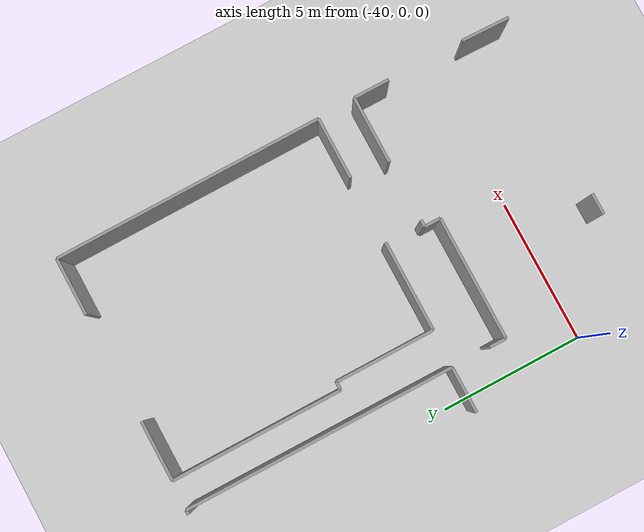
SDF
<sdf version="1.6">
 <world name="default">
  <model name="ground_plane">
   <static>1</static>
   <link name="link">
    <collision name="collision">
     <geometry><plane><normal>0 0 1</normal><size>100 100</size></plane></geometry>
     <surface><friction><ode><mu>100</mu><mu2>50</mu2></ode></friction></surface>
    </collision>
    <visual name="visual">
     <cast_shadows>0</cast_shadows>
     <geometry><plane><normal>0 0 1</normal><size>100 100</size></plane></geometry>
     <material>
      <script><uri>file://media/materials/scripts/gazebo.material</uri><name>Gazebo/Grey</name></script>
     </material>
    </visual>
   </link>
  </model>
  <model name="50056458">
   <static>1</static>
   <link name="Wall_7">
    <collision name="Wall_7_Collision">
     <geometry><box><size>1.59129985517 0.1 2.5</size></box></geometry>
     <pose>0.795649927583 0 1.25 0 0 0</pose>
    </collision>
    <visual name="Wall_7_Visual">
     <pose>0.795649927583 0 1.25 0 0 0</pose>
     <geometry><box><size>1.59129985517 0.1 2.5</size></box></geometry>
     <material>
      <script><uri>file://media/materials/scripts/gazebo.material</uri><name>Gazebo/Grey</name></script>
      <ambient>1 1 1 1</ambient>
     </material>
    </visual>
    <pose>15.9621232012 -10.6707208619 0 0 0 3.14159265359</pose>
   </link>
   <link name="Wall_11">
    <collision name="Wall_11_Collision">
     <geometry><box><size>0.1560131112 0.1 2.5</size></box></geometry>
     <pose>0.0780065555998 0 1.25 0 0 0</pose>
    </collision>
    <visual name="Wall_11_Visual">
     <pose>0.0780065555998 0 1.25 0 0 0</pose>
     <geometry><box><size>0.1560131112 0.1 2.5</size></box></geometry>
     <material>
      <script><uri>file://media/materials/scripts/gazebo.material</uri><name>Gazebo/Grey</name></script>
      <ambient>1 1 1 1</ambient>
     </material>
    </visual>
    <pose>15.8284702754 -1.3482175375 0 0 0 0.0</pose>
   </link>
   <link name="Wall_12">
    <collision name="Wall_12_Collision">
     <geometry><box><size>9.32253013999 0.1 2.5</size></box></geometry>
     <pose>4.66126507 0 1.25 0 0 0</pose>
    </collision>
    <visual name="Wall_12_Visual">
     <pose>4.66126507 0 1.25 0 0 0</pose>
     <geometry><box><size>9.32253013999 0.1 2.5</size></box></geometry>
     <material>
      <script><uri>file://media/materials/scripts/gazebo.material</uri><name>Gazebo/Grey</name></script>
      <ambient>1 1 1 1</ambient>
     </material>
    </visual>
    <pose>15.9844833866 -1.3482175375 0 0 0 -1.57319483948</pose>
   </link>
   <link name="Wall_13">
    <collision name="Wall_13_Collision">
     <geometry><box><size>2.14437565111 0.1 2.5</size></box></geometry>
     <pose>1.07218782556 0 1.25 0 0 0</pose>
    </collision>
    <visual name="Wall_13_Visual">
     <pose>1.07218782556 0 1.25 0 0 0</pose>
     <geometry><box><size>2.14437565111 0.1 2.5</size></box></geometry>
     <material>
      <script><uri>file://media/materials/scripts/gazebo.material</uri><name>Gazebo/Grey</name></script>
      <ambient>1 1 1 1</ambient>
     </material>
    </visual>
    <pose>24.8252263545 -10.7030753725 0 0 0 3.14159265359</pose>
   </link>
   <link name="Wall_14">
    <collision name="Wall_14_Collision">
     <geometry><box><size>3.11602734041 0.1 2.5</size></box></geometry>
     <pose>1.5580136702 0 1.25 0 0 0</pose>
    </collision>
    <visual name="Wall_14_Visual">
     <pose>1.5580136702 0 1.25 0 0 0</pose>
     <geometry><box><size>3.11602734041 0.1 2.5</size></box></geometry>
     <material>
      <script><uri>file://media/materials/scripts/gazebo.material</uri><name>Gazebo/Grey</name></script>
      <ambient>1 1 1 1</ambient>
     </material>
    </visual>
    <pose>20.3713145926 -10.7030753725 0 0 0 3.14159265359</pose>
   </link>
   <link name="Wall_15">
    <collision name="Wall_15_Collision">
     <geometry><box><size>3.41822863289 0.1 2.5</size></box></geometry>
     <pose>1.70911431645 0 1.25 0 0 0</pose>
    </collision>
    <visual name="Wall_15_Visual">
     <pose>1.70911431645 0 1.25 0 0 0</pose>
     <geometry><box><size>3.41822863289 0.1 2.5</size></box></geometry>
     <material>
      <script><uri>file://media/materials/scripts/gazebo.material</uri><name>Gazebo/Grey</name></script>
      <ambient>1 1 1 1</ambient>
     </material>
    </visual>
    <pose>17.2552872522 -10.7030753725 0 0 0 1.57079632679</pose>
   </link>
   <link name="Wall_16">
    <collision name="Wall_16_Collision">
     <geometry><box><size>0.279502316481 0.1 2.5</size></box></geometry>
     <pose>0.139751158241 0 1.25 0 0 0</pose>
    </collision>
    <visual name="Wall_16_Visual">
     <pose>0.139751158241 0 1.25 0 0 0</pose>
     <geometry><box><size>0.279502316481 0.1 2.5</size></box></geometry>
     <material>
      <script><uri>file://media/materials/scripts/gazebo.material</uri><name>Gazebo/Grey</name></script>
      <ambient>1 1 1 1</ambient>
     </material>
    </visual>
    <pose>17.2552872522 -7.28484673956 0 0 0 3.14159265359</pose>
   </link>
   <link name="Wall_17">
    <collision name="Wall_17_Collision">
     <geometry><box><size>5.89224762211 0.1 2.5</size></box></geometry>
     <pose>2.94612381106 0 1.25 0 0 0</pose>
    </collision>
    <visual name="Wall_17_Visual">
     <pose>2.94612381106 0 1.25 0 0 0</pose>
     <geometry><box><size>5.89224762211 0.1 2.5</size></box></geometry>
     <material>
      <script><uri>file://media/materials/scripts/gazebo.material</uri><name>Gazebo/Grey</name></script>
      <ambient>1 1 1 1</ambient>
     </material>
    </visual>
    <pose>16.9757849357 -7.28484673956 0 0 0 1.57079632679</pose>
   </link>
   <link name="Wall_18">
    <collision name="Wall_18_Collision">
     <geometry><box><size>2.07136625814 0.1 2.5</size></box></geometry>
     <pose>1.03568312907 0 1.25 0 0 0</pose>
    </collision>
    <visual name="Wall_18_Visual">
     <pose>1.03568312907 0 1.25 0 0 0</pose>
     <geometry><box><size>2.07136625814 0.1 2.5</size></box></geometry>
     <material>
      <script><uri>file://media/materials/scripts/gazebo.material</uri><name>Gazebo/Grey</name></script>
      <ambient>1 1 1 1</ambient>
     </material>
    </visual>
    <pose>16.9757849357 -1.39259911745 0 0 0 0.0</pose>
   </link>
   <link name="Wall_19">
    <collision name="Wall_19_Collision">
     <geometry><box><size>1.99598533036 0.1 2.5</size></box></geometry>
     <pose>0.997992665182 0 1.25 0 0 0</pose>
    </collision>
    <visual name="Wall_19_Visual">
     <pose>0.997992665182 0 1.25 0 0 0</pose>
     <geometry><box><size>1.99598533036 0.1 2.5</size></box></geometry>
     <material>
      <script><uri>file://media/materials/scripts/gazebo.material</uri><name>Gazebo/Grey</name></script>
      <ambient>1 1 1 1</ambient>
     </material>
    </visual>
    <pose>22.7950231648 -1.39259911745 0 0 0 0.0</pose>
   </link>
   <link name="Wall_20">
    <collision name="Wall_20_Collision">
     <geometry><box><size>9.31053913353 0.1 2.5</size></box></geometry>
     <pose>4.65526956676 0 1.25 0 0 0</pose>
    </collision>
    <visual name="Wall_20_Visual">
     <pose>4.65526956676 0 1.25 0 0 0</pose>
     <geometry><box><size>9.31053913353 0.1 2.5</size></box></geometry>
     <material>
      <script><uri>file://media/materials/scripts/gazebo.material</uri><name>Gazebo/Grey</name></script>
      <ambient>1 1 1 1</ambient>
     </material>
    </visual>
    <pose>24.7910084952 -1.39259911745 0 0 0 -1.56712114366</pose>
   </link>
   <link name="Wall_50">
    <collision name="Wall_50_Collision">
     <geometry><box><size>0.74296797581 0.1 2.5</size></box></geometry>
     <pose>0.371483987905 0 1.25 0 0 0</pose>
    </collision>
    <visual name="Wall_50_Visual">
     <pose>0.371483987905 0 1.25 0 0 0</pose>
     <geometry><box><size>0.74296797581 0.1 2.5</size></box></geometry>
     <material>
      <script><uri>file://media/materials/scripts/gazebo.material</uri><name>Gazebo/Grey</name></script>
      <ambient>1 1 1 1</ambient>
     </material>
    </visual>
    <pose>18.6514436718 -17.1587319065 0 0 0 3.14159265359</pose>
   </link>
   <link name="Wall_65">
    <collision name="Wall_65_Collision">
     <geometry><box><size>0.572895051115 0.1 2.5</size></box></geometry>
     <pose>0.286447525558 0 1.25 0 0 0</pose>
    </collision>
    <visual name="Wall_65_Visual">
     <pose>0.286447525558 0 1.25 0 0 0</pose>
     <geometry><box><size>0.572895051115 0.1 2.5</size></box></geometry>
     <material>
      <script><uri>file://media/materials/scripts/gazebo.material</uri><name>Gazebo/Grey</name></script>
      <ambient>1 1 1 1</ambient>
     </material>
    </visual>
    <pose>15.9511125039 -12.0025070511 0 0 0 -1.57079632679</pose>
   </link>
   <link name="Wall_66">
    <collision name="Wall_66_Collision">
     <geometry><box><size>4.27689362819 0.1 2.5</size></box></geometry>
     <pose>2.1384468141 0 1.25 0 0 0</pose>
    </collision>
    <visual name="Wall_66_Visual">
     <pose>2.1384468141 0 1.25 0 0 0</pose>
     <geometry><box><size>4.27689362819 0.1 2.5</size></box></geometry>
     <material>
      <script><uri>file://media/materials/scripts/gazebo.material</uri><name>Gazebo/Grey</name></script>
      <ambient>1 1 1 1</ambient>
     </material>
    </visual>
    <pose>15.9511125039 -12.5754021022 0 0 0 0.0</pose>
   </link>
   <link name="Wall_67">
    <collision name="Wall_67_Collision">
     <geometry><box><size>0.556971888843 0.1 2.5</size></box></geometry>
     <pose>0.278485944421 0 1.25 0 0 0</pose>
    </collision>
    <visual name="Wall_67_Visual">
     <pose>0.278485944421 0 1.25 0 0 0</pose>
     <geometry><box><size>0.556971888843 0.1 2.5</size></box></geometry>
     <material>
      <script><uri>file://media/materials/scripts/gazebo.material</uri><name>Gazebo/Grey</name></script>
      <ambient>1 1 1 1</ambient>
     </material>
    </visual>
    <pose>20.2280061321 -12.5754021022 0 0 0 1.57079632679</pose>
   </link>
   <link name="Wall_68">
    <collision name="Wall_68_Collision">
     <geometry><box><size>0.233934969128 0.1 2.5</size></box></geometry>
     <pose>0.116967484564 0 1.25 0 0 0</pose>
    </collision>
    <visual name="Wall_68_Visual">
     <pose>0.116967484564 0 1.25 0 0 0</pose>
     <geometry><box><size>0.233934969128 0.1 2.5</size></box></geometry>
     <material>
      <script><uri>file://media/materials/scripts/gazebo.material</uri><name>Gazebo/Grey</name></script>
      <ambient>1 1 1 1</ambient>
     </material>
    </visual>
    <pose>20.2280061321 -12.0184302134 0 0 0 0.0</pose>
   </link>
   <link name="Wall_69">
    <collision name="Wall_69_Collision">
     <geometry><box><size>2.3273226219 0.1 2.5</size></box></geometry>
     <pose>1.16366131095 0 1.25 0 0 0</pose>
    </collision>
    <visual name="Wall_69_Visual">
     <pose>1.16366131095 0 1.25 0 0 0</pose>
     <geometry><box><size>2.3273226219 0.1 2.5</size></box></geometry>
     <material>
      <script><uri>file://media/materials/scripts/gazebo.material</uri><name>Gazebo/Grey</name></script>
      <ambient>1 1 1 1</ambient>
     </material>
    </visual>
    <pose>22.5492305217 -12.0184302134 0 0 0 0.0</pose>
   </link>
   <link name="Wall_70">
    <collision name="Wall_70_Collision">
     <geometry><box><size>1.23641661091 0.1 2.5</size></box></geometry>
     <pose>0.618208305454 0 1.25 0 0 0</pose>
    </collision>
    <visual name="Wall_70_Visual">
     <pose>0.618208305454 0 1.25 0 0 0</pose>
     <geometry><box><size>1.23641661091 0.1 2.5</size></box></geometry>
     <material>
      <script><uri>file://media/materials/scripts/gazebo.material</uri><name>Gazebo/Grey</name></script>
      <ambient>1 1 1 1</ambient>
     </material>
    </visual>
    <pose>24.8765531436 -12.0184302134 0 0 0 -1.57079632679</pose>
   </link>
   <link name="Wall_71">
    <collision name="Wall_71_Collision">
     <geometry><box><size>1.65318046451 0.1 2.5</size></box></geometry>
     <pose>0.826590232257 0 1.25 0 0 0</pose>
    </collision>
    <visual name="Wall_71_Visual">
     <pose>0.826590232257 0 1.25 0 0 0</pose>
     <geometry><box><size>1.65318046451 0.1 2.5</size></box></geometry>
     <material>
      <script><uri>file://media/materials/scripts/gazebo.material</uri><name>Gazebo/Grey</name></script>
      <ambient>1 1 1 1</ambient>
     </material>
    </visual>
    <pose>24.8765531436 -15.9162170632 0 0 0 -1.59252089862</pose>
   </link>
   <pose>-54.75 15.0009033007 0 0 0 0</pose>
  </model>
 </world>
</sdf>
